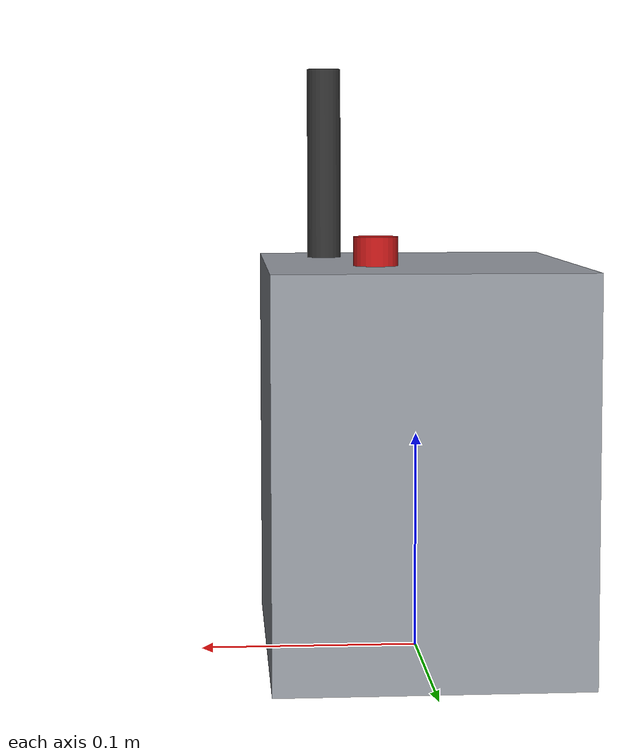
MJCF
<?xml version="1.0" encoding="utf-8"?>
<mujoco model="rockwell_hardness_tester">
  <compiler angle="radian" autolimits="true"/>
  <default>
    <default class="body"><geom contype="1" conaffinity="1"/></default>
  </default>
  <worldbody>
    <body name="base">
      <geom type="box" size="0.07 0.09 0.09" pos="0 0 0.09" rgba="0.6 0.62 0.65 1" class="body"/>
      <geom type="box" size="0.021 0.0045 0.0225" pos="-0.035 -0.081 0.135" rgba="0.9 0.7 0.1 1" class="body"/>
      <geom type="cylinder" size="0.01 0.008" pos="0.021 0.027 0.185" rgba="0.8 0.1 0.1 1" class="body"/>
      <body name="indenter_arm" pos="0.04 -0.05 0.22">
        <joint name="indenter_arm_joint" type="slide" axis="0 0 1" range="-0.05 0" damping="1.0" frictionloss="0.3"/>
  <geom type="cylinder" size="0.008 0.05" pos="0 0 0" rgba="0.2 0.2 0.2 1" class="body"/>
      </body>
    </body>
  </worldbody>
</mujoco>
